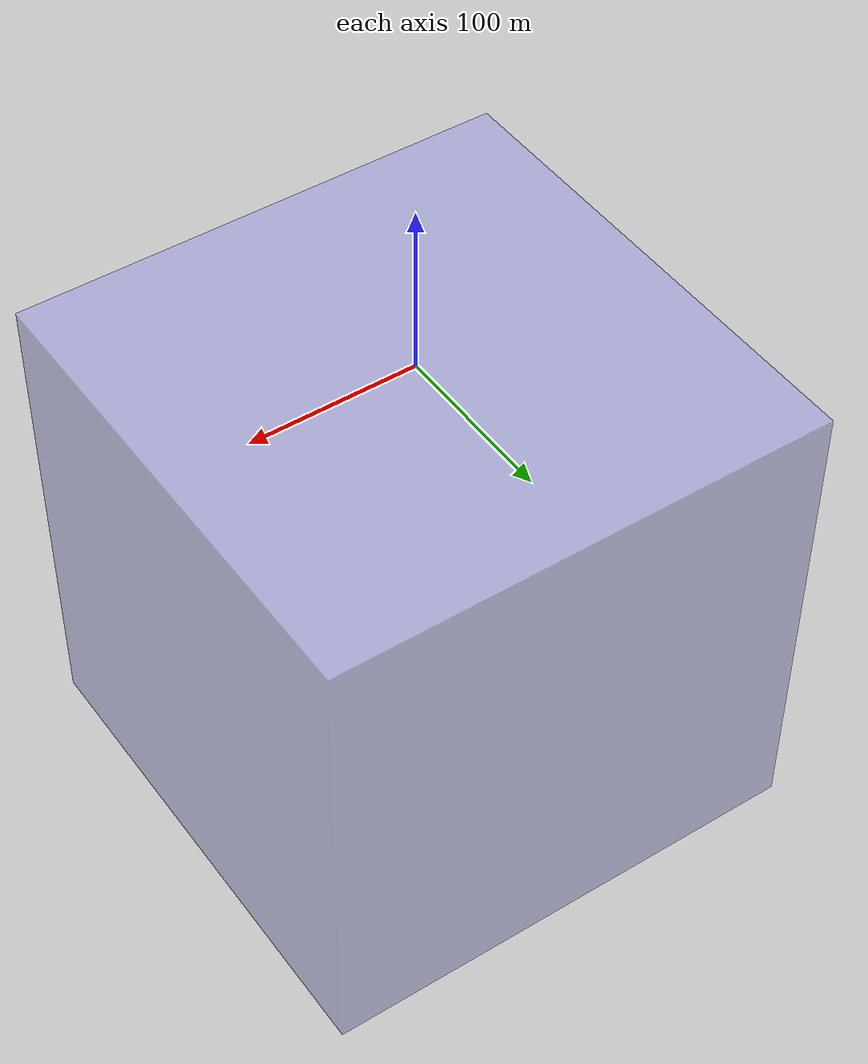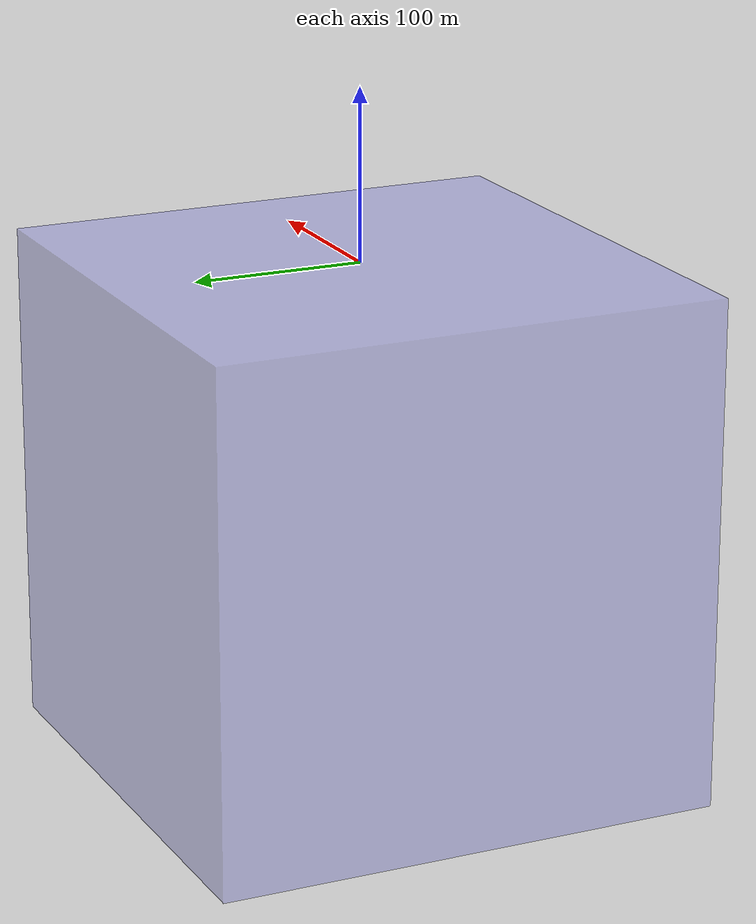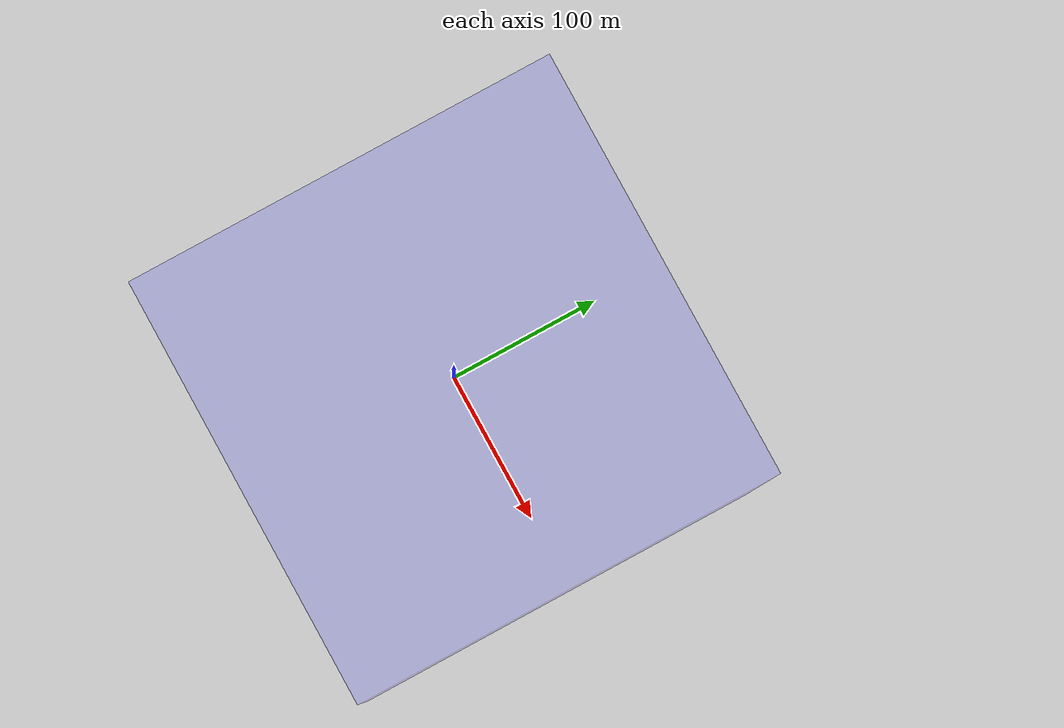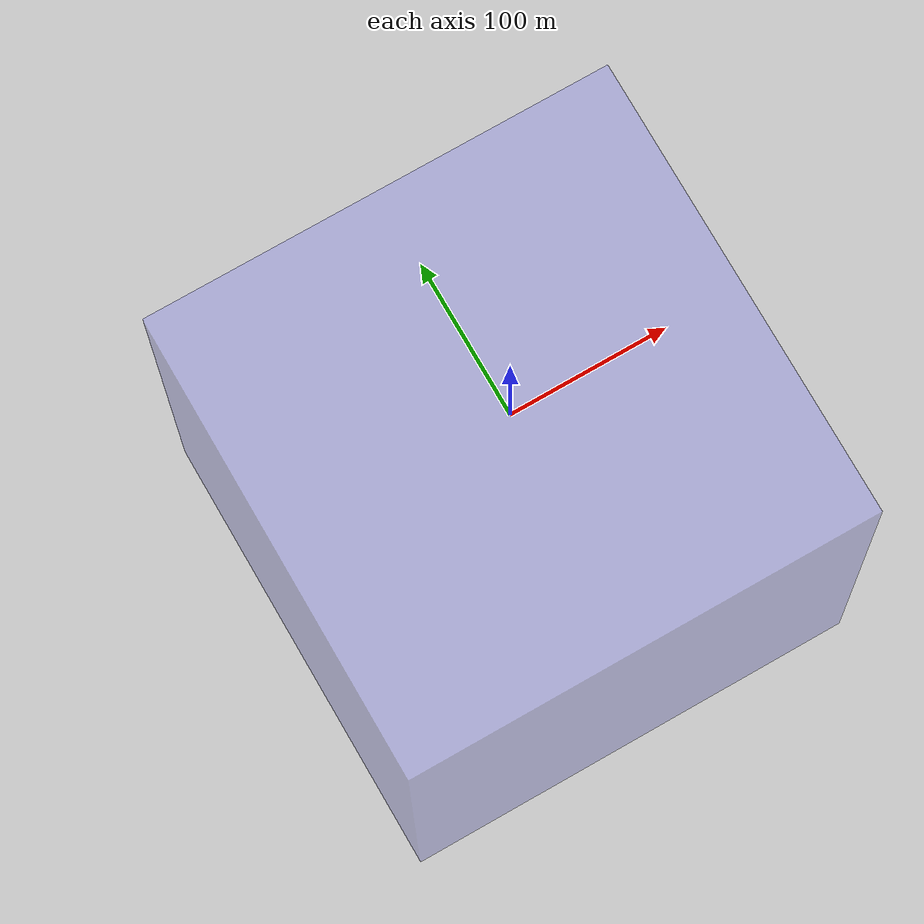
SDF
<?xml version="1.0" ?>
<sdf version="1.6">
  <world name="world">
    <model name="arena_water">
      <pose>0.0 0.0 0.0 0.0 0.0 0.0</pose>
      <link name="water">
        <pose>0 0 0 0 0 0</pose>
        <visual name="water_visual">
          <pose>0 0 -150.0 0 0 0</pose>
          <geometry>
            <box>
              <size>300 300 300</size>
            </box>
          </geometry>
          <material>
            <ambient>0.5 0.5 0.9 0.4</ambient>
            <diffuse>0.5 0.5 0.9 0.4</diffuse>
            <specular>0.5 0.5 0.9 0.0</specular>
            <emissive>0.5 0.5 0.9 0.0</emissive>
          </material>
        </visual>
      </link>
    </model>
  </world>
</sdf>
